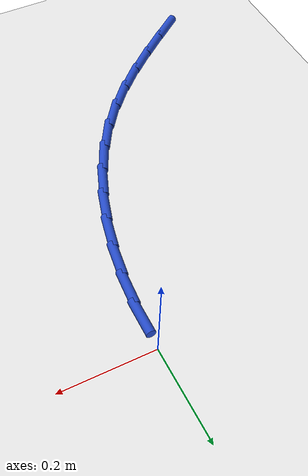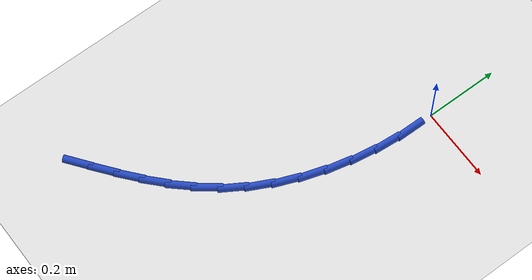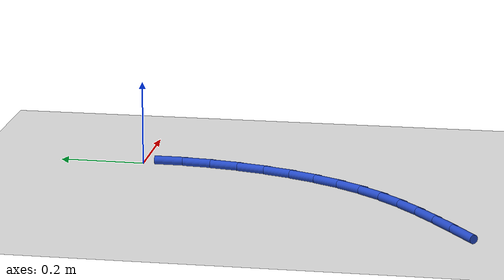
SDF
<sdf version="1.6">
 <world name="default">
  <model name="ground_plane">
   <static>1</static>
   <link name="link">
    <collision name="collision">
     <geometry><plane><normal>0 0 1</normal><size>100 100</size></plane></geometry>
     <surface><friction><ode><mu>100</mu><mu2>50</mu2></ode></friction></surface>
    </collision>
    <visual name="visual">
     <cast_shadows>0</cast_shadows>
     <geometry><plane><normal>0 0 1</normal><size>100 100</size></plane></geometry>
     <material>
      <script><uri>file://media/materials/scripts/gazebo.material</uri><name>Gazebo/WhiteGlow</name></script>
     </material>
    </visual>
   </link>
  </model>
  <model name="line">
   <link name="link_96">
    <pose>-0.428476876879926 -0.7873327975810608 0.01 0 1.57 0.6484665810698078</pose>
    <collision name="collision">
     <geometry><cylinder><radius>0.01</radius><length>0.08</length></cylinder></geometry>
    </collision>
    <visual name="visual">
     <material>
      <script><name>Gazebo/Blue</name><uri>file://media/materials/scripts/gazebo.material</uri></script>
     </material>
     <geometry><cylinder><radius>0.01</radius><length>0.08</length></cylinder></geometry>
    </visual>
   </link>
   <link name="link_97">
    <pose>-0.3747324858170291 -0.746605963586373 0.01 0 1.57 0.667898829759677</pose>
    <collision name="collision">
     <geometry><cylinder><radius>0.01</radius><length>0.08</length></cylinder></geometry>
    </collision>
    <visual name="visual">
     <material>
      <script><name>Gazebo/Blue</name><uri>file://media/materials/scripts/gazebo.material</uri></script>
     </material>
     <geometry><cylinder><radius>0.01</radius><length>0.08</length></cylinder></geometry>
    </visual>
   </link>
   <link name="link_98">
    <pose>-0.32242980031415086 -0.7053475210721194 0.01 0 1.57 0.7052506834158039</pose>
    <collision name="collision">
     <geometry><cylinder><radius>0.01</radius><length>0.08</length></cylinder></geometry>
    </collision>
    <visual name="visual">
     <material>
      <script><name>Gazebo/Blue</name><uri>file://media/materials/scripts/gazebo.material</uri></script>
     </material>
     <geometry><cylinder><radius>0.01</radius><length>0.08</length></cylinder></geometry>
    </visual>
   </link>
   <link name="link_99">
    <pose>-0.27229152431348835 -0.6626646003693663 0.01 0 1.57 0.7610034472706281</pose>
    <collision name="collision">
     <geometry><cylinder><radius>0.01</radius><length>0.08</length></cylinder></geometry>
    </collision>
    <visual name="visual">
     <material>
      <script><name>Gazebo/Blue</name><uri>file://media/materials/scripts/gazebo.material</uri></script>
     </material>
     <geometry><cylinder><radius>0.01</radius><length>0.08</length></cylinder></geometry>
    </visual>
   </link>
   <link name="link_100">
    <pose>-0.2250403617572362 -0.6176643318091788 0.01 0 1.57 0.835101883055436</pose>
    <collision name="collision">
     <geometry><cylinder><radius>0.01</radius><length>0.08</length></cylinder></geometry>
    </collision>
    <visual name="visual">
     <material>
      <script><name>Gazebo/Blue</name><uri>file://media/materials/scripts/gazebo.material</uri></script>
     </material>
     <geometry><cylinder><radius>0.01</radius><length>0.08</length></cylinder></geometry>
    </visual>
   </link>
   <link name="link_101">
    <pose>-0.1813990165875917 -0.5694538457226239 0.01 0 1.57 0.9260730857619001</pose>
    <collision name="collision">
     <geometry><cylinder><radius>0.01</radius><length>0.08</length></cylinder></geometry>
    </collision>
    <visual name="visual">
     <material>
      <script><name>Gazebo/Blue</name><uri>file://media/materials/scripts/gazebo.material</uri></script>
     </material>
     <geometry><cylinder><radius>0.01</radius><length>0.08</length></cylinder></geometry>
    </visual>
   </link>
   <link name="link_102">
    <pose>-0.14208032789557784 -0.5171621899279126 0.01 0 1.57 1.0218727701093737</pose>
    <collision name="collision">
     <geometry><cylinder><radius>0.01</radius><length>0.08</length></cylinder></geometry>
    </collision>
    <visual name="visual">
     <material>
      <script><name>Gazebo/Blue</name><uri>file://media/materials/scripts/gazebo.material</uri></script>
     </material>
     <geometry><cylinder><radius>0.01</radius><length>0.08</length></cylinder></geometry>
    </visual>
   </link>
   <link name="link_103">
    <pose>-0.1074882870927402 -0.46060460252907387 0.01 0 1.57 1.1108385428395804</pose>
    <collision name="collision">
     <geometry><cylinder><radius>0.01</radius><length>0.08</length></cylinder></geometry>
    </collision>
    <visual name="visual">
     <material>
      <script><name>Gazebo/Blue</name><uri>file://media/materials/scripts/gazebo.material</uri></script>
     </material>
     <geometry><cylinder><radius>0.01</radius><length>0.08</length></cylinder></geometry>
    </visual>
   </link>
   <link name="link_104">
    <pose>-0.07766420492178085 -0.40040211674645665 0.01 0 1.57 1.1935223662856438</pose>
    <collision name="collision">
     <geometry><cylinder><radius>0.01</radius><length>0.08</length></cylinder></geometry>
    </collision>
    <visual name="visual">
     <material>
      <script><name>Gazebo/Blue</name><uri>file://media/materials/scripts/gazebo.material</uri></script>
     </material>
     <geometry><cylinder><radius>0.01</radius><length>0.08</length></cylinder></geometry>
    </visual>
   </link>
   <link name="link_105">
    <pose>-0.05262867346903123 -0.3372217980087869 0.01 0 1.57 1.2712476066758518</pose>
    <collision name="collision">
     <geometry><cylinder><radius>0.01</radius><length>0.08</length></cylinder></geometry>
    </collision>
    <visual name="visual">
     <material>
      <script><name>Gazebo/Blue</name><uri>file://media/materials/scripts/gazebo.material</uri></script>
     </material>
     <geometry><cylinder><radius>0.01</radius><length>0.08</length></cylinder></geometry>
    </visual>
   </link>
   <link name="link_106">
    <pose>-0.032402284820821525 -0.2717307117447878 0.01 0 1.57 1.3453554155719067</pose>
    <collision name="collision">
     <geometry><cylinder><radius>0.01</radius><length>0.08</length></cylinder></geometry>
    </collision>
    <visual name="visual">
     <material>
      <script><name>Gazebo/Blue</name><uri>file://media/materials/scripts/gazebo.material</uri></script>
     </material>
     <geometry><cylinder><radius>0.01</radius><length>0.08</length></cylinder></geometry>
    </visual>
   </link>
   <link name="link_107">
    <pose>-0.017005631063482962 -0.20459592338318544 0.01 0 1.57 1.41717694008856</pose>
    <collision name="collision">
     <geometry><cylinder><radius>0.01</radius><length>0.08</length></cylinder></geometry>
    </collision>
    <visual name="visual">
     <material>
      <script><name>Gazebo/Blue</name><uri>file://media/materials/scripts/gazebo.material</uri></script>
     </material>
     <geometry><cylinder><radius>0.01</radius><length>0.08</length></cylinder></geometry>
    </visual>
   </link>
   <link name="link_108">
    <pose>-0.00645930428334591 -0.13648449835270313 0.01 0 1.57 1.4880374502876101</pose>
    <collision name="collision">
     <geometry><cylinder><radius>0.01</radius><length>0.08</length></cylinder></geometry>
    </collision>
    <visual name="visual">
     <material>
      <script><name>Gazebo/Blue</name><uri>file://media/materials/scripts/gazebo.material</uri></script>
     </material>
     <geometry><cylinder><radius>0.01</radius><length>0.08</length></cylinder></geometry>
    </visual>
   </link>
   <link name="link_109">
    <pose>-0.0007838965667413648 -0.06806350208206695 0.01 0 1.57 1.559279700619494</pose>
    <collision name="collision">
     <geometry><cylinder><radius>0.01</radius><length>0.08</length></cylinder></geometry>
    </collision>
    <visual name="visual">
     <material>
      <script><name>Gazebo/Blue</name><uri>file://media/materials/scripts/gazebo.material</uri></script>
     </material>
     <geometry><cylinder><radius>0.01</radius><length>0.08</length></cylinder></geometry>
    </visual>
   </link>
  </model>
 </world>
</sdf>
